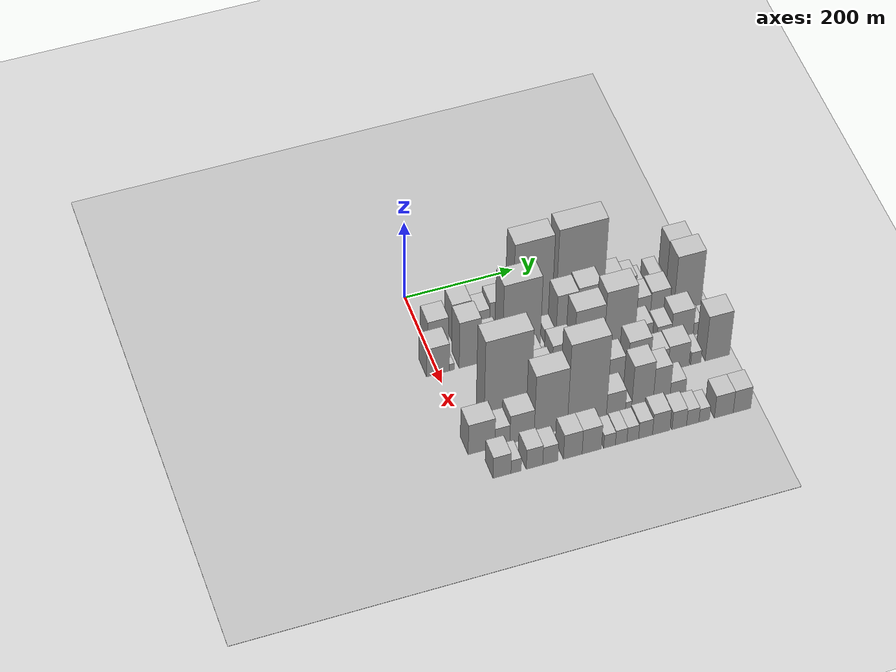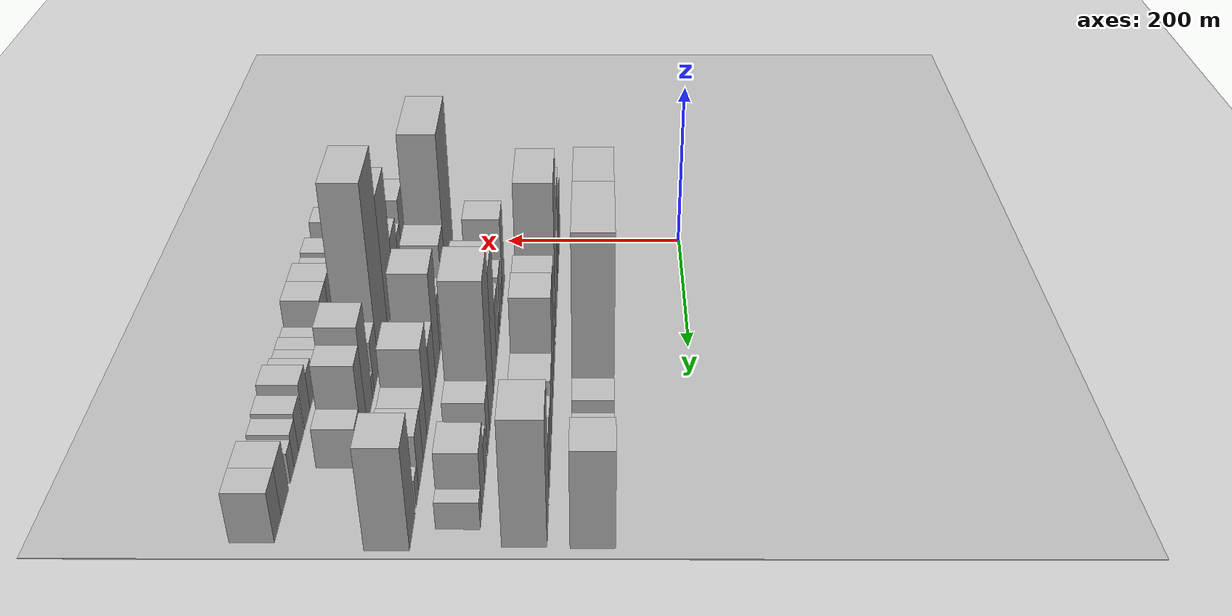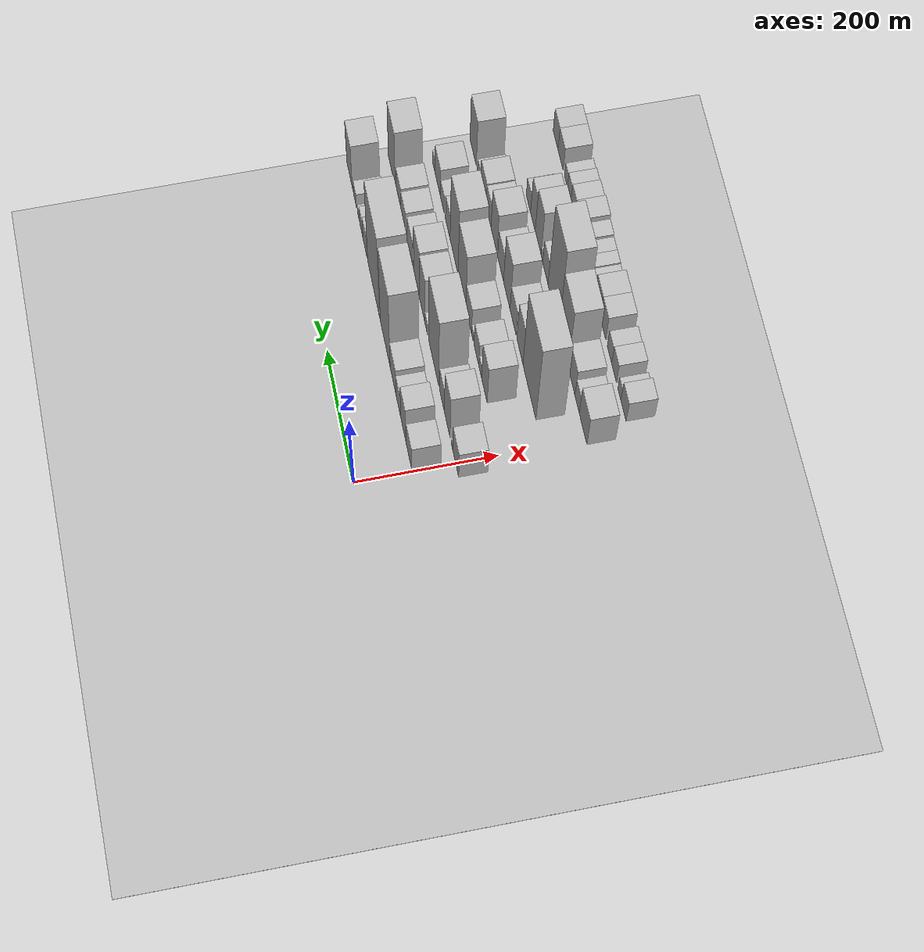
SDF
<sdf version="1.6">
 <world name="default">
  <include><name>ground_plane_1</name><uri>model://HANNAS_ground_plane</uri></include>
  <include>
   <name>ground_plane_2</name>
   <uri>model://HANNAS_ground_plane</uri>
   <pose>100 0 0  0 0 0</pose>
  </include>
  <model name="building_28">
   <static>1</static>
   <pose>100.0000 20.5680 0 0.000000 0.000000 0.000000</pose>
   <link name="link">
    <pose>0 0 34.50 0 0 0</pose>
    <collision name="collision"><geometry><box><size>40.0000 38.1749 69.0000</size></box></geometry></collision>
    <visual name="visual">
     <cast_shadows>0</cast_shadows>
     <geometry><box><size>40.0000 38.1749 69.0000</size></box></geometry>
     <material>
      <script>
       <uri>model://HANNAS_wall/materials/scripts</uri>
       <uri>model://HANNAS_wall/materials/textures</uri>
       <name>vrc/HANNAS_wall</name>
      </script>
     </material>
    </visual>
   </link>
  </model>
  <model name="building_29">
   <static>1</static>
   <pose>100.0000 63.3625 0 0.000000 0.000000 0.000000</pose>
   <link name="link">
    <pose>0 0 49.50 0 0 0</pose>
    <collision name="collision"><geometry><box><size>40.0000 35.4141 99.0000</size></box></geometry></collision>
    <visual name="visual">
     <cast_shadows>0</cast_shadows>
     <geometry><box><size>40.0000 35.4141 99.0000</size></box></geometry>
     <material>
      <script>
       <uri>model://HANNAS_wall/materials/scripts</uri>
       <uri>model://HANNAS_wall/materials/textures</uri>
       <name>vrc/HANNAS_wall</name>
      </script>
     </material>
    </visual>
   </link>
  </model>
  <model name="building_30">
   <static>1</static>
   <pose>100.0000 97.8033 0 0.000000 0.000000 0.000000</pose>
   <link name="link">
    <pose>0 0 31.50 0 0 0</pose>
    <collision name="collision"><geometry><box><size>40.0000 33.4676 63.0000</size></box></geometry></collision>
    <visual name="visual">
     <cast_shadows>0</cast_shadows>
     <geometry><box><size>40.0000 33.4676 63.0000</size></box></geometry>
     <material>
      <script>
       <uri>model://HANNAS_wall/materials/scripts</uri>
       <uri>model://HANNAS_wall/materials/textures</uri>
       <name>vrc/HANNAS_wall</name>
      </script>
     </material>
    </visual>
   </link>
  </model>
  <model name="building_31">
   <static>1</static>
   <pose>100.0000 135.9520 0 0.000000 0.000000 0.000000</pose>
   <link name="link">
    <pose>0 0 39.00 0 0 0</pose>
    <collision name="collision"><geometry><box><size>40.0000 42.8297 78.0000</size></box></geometry></collision>
    <visual name="visual">
     <cast_shadows>0</cast_shadows>
     <geometry><box><size>40.0000 42.8297 78.0000</size></box></geometry>
     <material>
      <script>
       <uri>model://HANNAS_wall/materials/scripts</uri>
       <uri>model://HANNAS_wall/materials/textures</uri>
       <name>vrc/HANNAS_wall</name>
      </script>
     </material>
    </visual>
   </link>
  </model>
  <model name="building_32">
   <static>1</static>
   <pose>100.0000 193.5673 0 0.000000 0.000000 0.000000</pose>
   <link name="link">
    <pose>0 0 108.00 0 0 0</pose>
    <collision name="collision"><geometry><box><size>40.0000 72.4009 216.0000</size></box></geometry></collision>
    <visual name="visual">
     <cast_shadows>0</cast_shadows>
     <geometry><box><size>40.0000 72.4009 216.0000</size></box></geometry>
     <material>
      <script>
       <uri>model://HANNAS_wall/materials/scripts</uri>
       <uri>model://HANNAS_wall/materials/textures</uri>
       <name>vrc/HANNAS_wall</name>
      </script>
     </material>
    </visual>
   </link>
  </model>
  <model name="building_33">
   <static>1</static>
   <pose>100.0000 233.4649 0 0.000000 0.000000 0.000000</pose>
   <link name="link">
    <pose>0 0 9.00 0 0 0</pose>
    <collision name="collision"><geometry><box><size>40.0000 7.3943 18.0000</size></box></geometry></collision>
    <visual name="visual">
     <cast_shadows>0</cast_shadows>
     <geometry><box><size>40.0000 7.3943 18.0000</size></box></geometry>
     <material>
      <script>
       <uri>model://HANNAS_wall/materials/scripts</uri>
       <uri>model://HANNAS_wall/materials/textures</uri>
       <name>vrc/HANNAS_wall</name>
      </script>
     </material>
    </visual>
   </link>
  </model>
  <model name="building_34">
   <static>1</static>
   <pose>100.0000 281.5969 0 0.000000 0.000000 0.000000</pose>
   <link name="link">
    <pose>0 0 112.50 0 0 0</pose>
    <collision name="collision"><geometry><box><size>40.0000 88.8697 225.0000</size></box></geometry></collision>
    <visual name="visual">
     <cast_shadows>0</cast_shadows>
     <geometry><box><size>40.0000 88.8697 225.0000</size></box></geometry>
     <material>
      <script>
       <uri>model://HANNAS_wall/materials/scripts</uri>
       <uri>model://HANNAS_wall/materials/textures</uri>
       <name>vrc/HANNAS_wall</name>
      </script>
     </material>
    </visual>
   </link>
  </model>
  <model name="building_35">
   <static>1</static>
   <pose>100.0000 346.0540 0 0.000000 0.000000 0.000000</pose>
   <link name="link">
    <pose>0 0 31.50 0 0 0</pose>
    <collision name="collision"><geometry><box><size>40.0000 32.0444 63.0000</size></box></geometry></collision>
    <visual name="visual">
     <cast_shadows>0</cast_shadows>
     <geometry><box><size>40.0000 32.0444 63.0000</size></box></geometry>
     <material>
      <script>
       <uri>model://HANNAS_wall/materials/scripts</uri>
       <uri>model://HANNAS_wall/materials/textures</uri>
       <name>vrc/HANNAS_wall</name>
      </script>
     </material>
    </visual>
   </link>
  </model>
  <model name="building_36">
   <static>1</static>
   <pose>100.0000 374.7525 0 0.000000 0.000000 0.000000</pose>
   <link name="link">
    <pose>0 0 24.00 0 0 0</pose>
    <collision name="collision"><geometry><box><size>40.0000 25.3526 48.0000</size></box></geometry></collision>
    <visual name="visual">
     <cast_shadows>0</cast_shadows>
     <geometry><box><size>40.0000 25.3526 48.0000</size></box></geometry>
     <material>
      <script>
       <uri>model://HANNAS_wall/materials/scripts</uri>
       <uri>model://HANNAS_wall/materials/textures</uri>
       <name>vrc/HANNAS_wall</name>
      </script>
     </material>
    </visual>
   </link>
  </model>
  <model name="building_37">
   <static>1</static>
   <pose>100.0000 396.3454 0 0.000000 0.000000 0.000000</pose>
   <link name="link">
    <pose>0 0 13.50 0 0 0</pose>
    <collision name="collision"><geometry><box><size>40.0000 11.8333 27.0000</size></box></geometry></collision>
    <visual name="visual">
     <cast_shadows>0</cast_shadows>
     <geometry><box><size>40.0000 11.8333 27.0000</size></box></geometry>
     <material>
      <script>
       <uri>model://HANNAS_wall/materials/scripts</uri>
       <uri>model://HANNAS_wall/materials/textures</uri>
       <name>vrc/HANNAS_wall</name>
      </script>
     </material>
    </visual>
   </link>
  </model>
  <model name="building_38">
   <static>1</static>
   <pose>100.0000 422.8853 0 0.000000 0.000000 0.000000</pose>
   <link name="link">
    <pose>0 0 19.50 0 0 0</pose>
    <collision name="collision"><geometry><box><size>40.0000 23.2465 39.0000</size></box></geometry></collision>
    <visual name="visual">
     <cast_shadows>0</cast_shadows>
     <geometry><box><size>40.0000 23.2465 39.0000</size></box></geometry>
     <material>
      <script>
       <uri>model://HANNAS_wall/materials/scripts</uri>
       <uri>model://HANNAS_wall/materials/textures</uri>
       <name>vrc/HANNAS_wall</name>
      </script>
     </material>
    </visual>
   </link>
  </model>
  <model name="building_39">
   <static>1</static>
   <pose>100.0000 441.6473 0 0.000000 0.000000 0.000000</pose>
   <link name="link">
    <pose>0 0 7.50 0 0 0</pose>
    <collision name="collision"><geometry><box><size>40.0000 6.2776 15.0000</size></box></geometry></collision>
    <visual name="visual">
     <cast_shadows>0</cast_shadows>
     <geometry><box><size>40.0000 6.2776 15.0000</size></box></geometry>
     <material>
      <script>
       <uri>model://HANNAS_wall/materials/scripts</uri>
       <uri>model://HANNAS_wall/materials/textures</uri>
       <name>vrc/HANNAS_wall</name>
      </script>
     </material>
    </visual>
   </link>
  </model>
  <model name="building_40">
   <static>1</static>
   <pose>100.0000 466.2544 0 0.000000 0.000000 0.000000</pose>
   <link name="link">
    <pose>0 0 57.00 0 0 0</pose>
    <collision name="collision"><geometry><box><size>40.0000 42.9366 114.0000</size></box></geometry></collision>
    <visual name="visual">
     <cast_shadows>0</cast_shadows>
     <geometry><box><size>40.0000 42.9366 114.0000</size></box></geometry>
     <material>
      <script>
       <uri>model://HANNAS_wall/materials/scripts</uri>
       <uri>model://HANNAS_wall/materials/textures</uri>
       <name>vrc/HANNAS_wall</name>
      </script>
     </material>
    </visual>
   </link>
  </model>
  <model name="building_79">
   <static>1</static>
   <pose>160.0000 -0.0028 0 0.000000 0.000000 0.000000</pose>
   <link name="link">
    <pose>0 0 37.50 0 0 0</pose>
    <collision name="collision"><geometry><box><size>40.0000 41.6627 75.0000</size></box></geometry></collision>
    <visual name="visual">
     <cast_shadows>0</cast_shadows>
     <geometry><box><size>40.0000 41.6627 75.0000</size></box></geometry>
     <material>
      <script>
       <uri>model://HANNAS_wall/materials/scripts</uri>
       <uri>model://HANNAS_wall/materials/textures</uri>
       <name>vrc/HANNAS_wall</name>
      </script>
     </material>
    </visual>
   </link>
  </model>
  <model name="building_80">
   <static>1</static>
   <pose>160.0000 25.1377 0 0.000000 0.000000 0.000000</pose>
   <link name="link">
    <pose>0 0 9.00 0 0 0</pose>
    <collision name="collision"><geometry><box><size>40.0000 8.6183 18.0000</size></box></geometry></collision>
    <visual name="visual">
     <cast_shadows>0</cast_shadows>
     <geometry><box><size>40.0000 8.6183 18.0000</size></box></geometry>
     <material>
      <script>
       <uri>model://HANNAS_wall/materials/scripts</uri>
       <uri>model://HANNAS_wall/materials/textures</uri>
       <name>vrc/HANNAS_wall</name>
      </script>
     </material>
    </visual>
   </link>
  </model>
  <model name="building_81">
   <static>1</static>
   <pose>160.0000 58.0273 0 0.000000 0.000000 0.000000</pose>
   <link name="link">
    <pose>0 0 61.50 0 0 0</pose>
    <collision name="collision"><geometry><box><size>40.0000 39.1610 123.0000</size></box></geometry></collision>
    <visual name="visual">
     <cast_shadows>0</cast_shadows>
     <geometry><box><size>40.0000 39.1610 123.0000</size></box></geometry>
     <material>
      <script>
       <uri>model://HANNAS_wall/materials/scripts</uri>
       <uri>model://HANNAS_wall/materials/textures</uri>
       <name>vrc/HANNAS_wall</name>
      </script>
     </material>
    </visual>
   </link>
  </model>
  <model name="building_82">
   <static>1</static>
   <pose>160.0000 94.8372 0 0.000000 0.000000 0.000000</pose>
   <link name="link">
    <pose>0 0 33.00 0 0 0</pose>
    <collision name="collision"><geometry><box><size>40.0000 34.4588 66.0000</size></box></geometry></collision>
    <visual name="visual">
     <cast_shadows>0</cast_shadows>
     <geometry><box><size>40.0000 34.4588 66.0000</size></box></geometry>
     <material>
      <script>
       <uri>model://HANNAS_wall/materials/scripts</uri>
       <uri>model://HANNAS_wall/materials/textures</uri>
       <name>vrc/HANNAS_wall</name>
      </script>
     </material>
    </visual>
   </link>
  </model>
  <model name="building_83">
   <static>1</static>
   <pose>160.0000 151.8277 0 0.000000 0.000000 0.000000</pose>
   <link name="link">
    <pose>0 0 96.00 0 0 0</pose>
    <collision name="collision"><geometry><box><size>40.0000 69.5223 192.0000</size></box></geometry></collision>
    <visual name="visual">
     <cast_shadows>0</cast_shadows>
     <geometry><box><size>40.0000 69.5223 192.0000</size></box></geometry>
     <material>
      <script>
       <uri>model://HANNAS_wall/materials/scripts</uri>
       <uri>model://HANNAS_wall/materials/textures</uri>
       <name>vrc/HANNAS_wall</name>
      </script>
     </material>
    </visual>
   </link>
  </model>
  <model name="building_84">
   <static>1</static>
   <pose>160.0000 205.9850 0 0.000000 0.000000 0.000000</pose>
   <link name="link">
    <pose>0 0 16.50 0 0 0</pose>
    <collision name="collision"><geometry><box><size>40.0000 18.7923 33.0000</size></box></geometry></collision>
    <visual name="visual">
     <cast_shadows>0</cast_shadows>
     <geometry><box><size>40.0000 18.7923 33.0000</size></box></geometry>
     <material>
      <script>
       <uri>model://HANNAS_wall/materials/scripts</uri>
       <uri>model://HANNAS_wall/materials/textures</uri>
       <name>vrc/HANNAS_wall</name>
      </script>
     </material>
    </visual>
   </link>
  </model>
  <model name="building_85">
   <static>1</static>
   <pose>160.0000 234.8938 0 0.000000 0.000000 0.000000</pose>
   <link name="link">
    <pose>0 0 63.00 0 0 0</pose>
    <collision name="collision"><geometry><box><size>40.0000 39.0253 126.0000</size></box></geometry></collision>
    <visual name="visual">
     <cast_shadows>0</cast_shadows>
     <geometry><box><size>40.0000 39.0253 126.0000</size></box></geometry>
     <material>
      <script>
       <uri>model://HANNAS_wall/materials/scripts</uri>
       <uri>model://HANNAS_wall/materials/textures</uri>
       <name>vrc/HANNAS_wall</name>
      </script>
     </material>
    </visual>
   </link>
  </model>
  <model name="building_86">
   <static>1</static>
   <pose>160.0000 275.4788 0 0.000000 0.000000 0.000000</pose>
   <link name="link">
    <pose>0 0 66.00 0 0 0</pose>
    <collision name="collision"><geometry><box><size>40.0000 42.1447 132.0000</size></box></geometry></collision>
    <visual name="visual">
     <cast_shadows>0</cast_shadows>
     <geometry><box><size>40.0000 42.1447 132.0000</size></box></geometry>
     <material>
      <script>
       <uri>model://HANNAS_wall/materials/scripts</uri>
       <uri>model://HANNAS_wall/materials/textures</uri>
       <name>vrc/HANNAS_wall</name>
      </script>
     </material>
    </visual>
   </link>
  </model>
  <model name="building_87">
   <static>1</static>
   <pose>160.0000 324.4943 0 0.000000 0.000000 0.000000</pose>
   <link name="link">
    <pose>0 0 36.00 0 0 0</pose>
    <collision name="collision"><geometry><box><size>40.0000 41.8863 72.0000</size></box></geometry></collision>
    <visual name="visual">
     <cast_shadows>0</cast_shadows>
     <geometry><box><size>40.0000 41.8863 72.0000</size></box></geometry>
     <material>
      <script>
       <uri>model://HANNAS_wall/materials/scripts</uri>
       <uri>model://HANNAS_wall/materials/textures</uri>
       <name>vrc/HANNAS_wall</name>
      </script>
     </material>
    </visual>
   </link>
  </model>
  <model name="building_88">
   <static>1</static>
   <pose>160.0000 373.0332 0 0.000000 0.000000 0.000000</pose>
   <link name="link">
    <pose>0 0 31.50 0 0 0</pose>
    <collision name="collision"><geometry><box><size>40.0000 35.1916 63.0000</size></box></geometry></collision>
    <visual name="visual">
     <cast_shadows>0</cast_shadows>
     <geometry><box><size>40.0000 35.1916 63.0000</size></box></geometry>
     <material>
      <script>
       <uri>model://HANNAS_wall/materials/scripts</uri>
       <uri>model://HANNAS_wall/materials/textures</uri>
       <name>vrc/HANNAS_wall</name>
      </script>
     </material>
    </visual>
   </link>
  </model>
  <model name="building_89">
   <static>1</static>
   <pose>160.0000 408.6458 0 0.000000 0.000000 0.000000</pose>
   <link name="link">
    <pose>0 0 34.50 0 0 0</pose>
    <collision name="collision"><geometry><box><size>40.0000 36.0336 69.0000</size></box></geometry></collision>
    <visual name="visual">
     <cast_shadows>0</cast_shadows>
     <geometry><box><size>40.0000 36.0336 69.0000</size></box></geometry>
     <material>
      <script>
       <uri>model://HANNAS_wall/materials/scripts</uri>
       <uri>model://HANNAS_wall/materials/textures</uri>
       <name>vrc/HANNAS_wall</name>
      </script>
     </material>
    </visual>
   </link>
  </model>
  <model name="building_90">
   <static>1</static>
   <pose>160.0000 460.5051 0 0.000000 0.000000 0.000000</pose>
   <link name="link">
    <pose>0 0 73.50 0 0 0</pose>
    <collision name="collision"><geometry><box><size>40.0000 51.6851 147.0000</size></box></geometry></collision>
    <visual name="visual">
     <cast_shadows>0</cast_shadows>
     <geometry><box><size>40.0000 51.6851 147.0000</size></box></geometry>
     <material>
      <script>
       <uri>model://HANNAS_wall/materials/scripts</uri>
       <uri>model://HANNAS_wall/materials/textures</uri>
       <name>vrc/HANNAS_wall</name>
      </script>
     </material>
    </visual>
   </link>
  </model>
  <model name="building_120">
   <static>1</static>
   <pose>220.0000 98.4463 0 0.000000 0.000000 0.000000</pose>
   <link name="link">
    <pose>0 0 52.50 0 0 0</pose>
    <collision name="collision"><geometry><box><size>40.0000 37.8514 105.0000</size></box></geometry></collision>
    <visual name="visual">
     <cast_shadows>0</cast_shadows>
     <geometry><box><size>40.0000 37.8514 105.0000</size></box></geometry>
     <material>
      <script>
       <uri>model://HANNAS_wall/materials/scripts</uri>
       <uri>model://HANNAS_wall/materials/textures</uri>
       <name>vrc/HANNAS_wall</name>
      </script>
     </material>
    </visual>
   </link>
  </model>
  <model name="building_121">
   <static>1</static>
   <pose>220.0000 126.3994 0 0.000000 0.000000 0.000000</pose>
   <link name="link">
    <pose>0 0 16.50 0 0 0</pose>
    <collision name="collision"><geometry><box><size>40.0000 18.0549 33.0000</size></box></geometry></collision>
    <visual name="visual">
     <cast_shadows>0</cast_shadows>
     <geometry><box><size>40.0000 18.0549 33.0000</size></box></geometry>
     <material>
      <script>
       <uri>model://HANNAS_wall/materials/scripts</uri>
       <uri>model://HANNAS_wall/materials/textures</uri>
       <name>vrc/HANNAS_wall</name>
      </script>
     </material>
    </visual>
   </link>
  </model>
  <model name="building_122">
   <static>1</static>
   <pose>220.0000 152.2395 0 0.000000 0.000000 0.000000</pose>
   <link name="link">
    <pose>0 0 33.00 0 0 0</pose>
    <collision name="collision"><geometry><box><size>40.0000 33.6254 66.0000</size></box></geometry></collision>
    <visual name="visual">
     <cast_shadows>0</cast_shadows>
     <geometry><box><size>40.0000 33.6254 66.0000</size></box></geometry>
     <material>
      <script>
       <uri>model://HANNAS_wall/materials/scripts</uri>
       <uri>model://HANNAS_wall/materials/textures</uri>
       <name>vrc/HANNAS_wall</name>
      </script>
     </material>
    </visual>
   </link>
  </model>
  <model name="building_123">
   <static>1</static>
   <pose>220.0000 180.9071 0 0.000000 0.000000 0.000000</pose>
   <link name="link">
    <pose>0 0 13.50 0 0 0</pose>
    <collision name="collision"><geometry><box><size>40.0000 11.7097 27.0000</size></box></geometry></collision>
    <visual name="visual">
     <cast_shadows>0</cast_shadows>
     <geometry><box><size>40.0000 11.7097 27.0000</size></box></geometry>
     <material>
      <script>
       <uri>model://HANNAS_wall/materials/scripts</uri>
       <uri>model://HANNAS_wall/materials/textures</uri>
       <name>vrc/HANNAS_wall</name>
      </script>
     </material>
    </visual>
   </link>
  </model>
  <model name="building_124">
   <static>1</static>
   <pose>220.0000 206.4666 0 0.000000 0.000000 0.000000</pose>
   <link name="link">
    <pose>0 0 36.00 0 0 0</pose>
    <collision name="collision"><geometry><box><size>40.0000 39.4092 72.0000</size></box></geometry></collision>
    <visual name="visual">
     <cast_shadows>0</cast_shadows>
     <geometry><box><size>40.0000 39.4092 72.0000</size></box></geometry>
     <material>
      <script>
       <uri>model://HANNAS_wall/materials/scripts</uri>
       <uri>model://HANNAS_wall/materials/textures</uri>
       <name>vrc/HANNAS_wall</name>
      </script>
     </material>
    </visual>
   </link>
  </model>
  <model name="building_125">
   <static>1</static>
   <pose>220.0000 253.4087 0 0.000000 0.000000 0.000000</pose>
   <link name="link">
    <pose>0 0 75.00 0 0 0</pose>
    <collision name="collision"><geometry><box><size>40.0000 54.4751 150.0000</size></box></geometry></collision>
    <visual name="visual">
     <cast_shadows>0</cast_shadows>
     <geometry><box><size>40.0000 54.4751 150.0000</size></box></geometry>
     <material>
      <script>
       <uri>model://HANNAS_wall/materials/scripts</uri>
       <uri>model://HANNAS_wall/materials/textures</uri>
       <name>vrc/HANNAS_wall</name>
      </script>
     </material>
    </visual>
   </link>
  </model>
  <model name="building_126">
   <static>1</static>
   <pose>220.0000 308.9413 0 0.000000 0.000000 0.000000</pose>
   <link name="link">
    <pose>0 0 90.00 0 0 0</pose>
    <collision name="collision"><geometry><box><size>40.0000 56.5900 180.0000</size></box></geometry></collision>
    <visual name="visual">
     <cast_shadows>0</cast_shadows>
     <geometry><box><size>40.0000 56.5900 180.0000</size></box></geometry>
     <material>
      <script>
       <uri>model://HANNAS_wall/materials/scripts</uri>
       <uri>model://HANNAS_wall/materials/textures</uri>
       <name>vrc/HANNAS_wall</name>
      </script>
     </material>
    </visual>
   </link>
  </model>
  <model name="building_127">
   <static>1</static>
   <pose>220.0000 353.8009 0 0.000000 0.000000 0.000000</pose>
   <link name="link">
    <pose>0 0 33.00 0 0 0</pose>
    <collision name="collision"><geometry><box><size>40.0000 33.1292 66.0000</size></box></geometry></collision>
    <visual name="visual">
     <cast_shadows>0</cast_shadows>
     <geometry><box><size>40.0000 33.1292 66.0000</size></box></geometry>
     <material>
      <script>
       <uri>model://HANNAS_wall/materials/scripts</uri>
       <uri>model://HANNAS_wall/materials/textures</uri>
       <name>vrc/HANNAS_wall</name>
      </script>
     </material>
    </visual>
   </link>
  </model>
  <model name="building_128">
   <static>1</static>
   <pose>220.0000 392.8090 0 0.000000 0.000000 0.000000</pose>
   <link name="link">
    <pose>0 0 24.00 0 0 0</pose>
    <collision name="collision"><geometry><box><size>40.0000 26.8870 48.0000</size></box></geometry></collision>
    <visual name="visual">
     <cast_shadows>0</cast_shadows>
     <geometry><box><size>40.0000 26.8870 48.0000</size></box></geometry>
     <material>
      <script>
       <uri>model://HANNAS_wall/materials/scripts</uri>
       <uri>model://HANNAS_wall/materials/textures</uri>
       <name>vrc/HANNAS_wall</name>
      </script>
     </material>
    </visual>
   </link>
  </model>
  <model name="building_129">
   <static>1</static>
   <pose>220.0000 426.8729 0 0.000000 0.000000 0.000000</pose>
   <link name="link">
    <pose>0 0 37.50 0 0 0</pose>
    <collision name="collision"><geometry><box><size>40.0000 41.2408 75.0000</size></box></geometry></collision>
    <visual name="visual">
     <cast_shadows>0</cast_shadows>
     <geometry><box><size>40.0000 41.2408 75.0000</size></box></geometry>
     <material>
      <script>
       <uri>model://HANNAS_wall/materials/scripts</uri>
       <uri>model://HANNAS_wall/materials/textures</uri>
       <name>vrc/HANNAS_wall</name>
      </script>
     </material>
    </visual>
   </link>
  </model>
  <model name="building_130">
   <static>1</static>
   <pose>220.0000 456.2334 0 0.000000 0.000000 0.000000</pose>
   <link name="link">
    <pose>0 0 16.50 0 0 0</pose>
    <collision name="collision"><geometry><box><size>40.0000 17.4803 33.0000</size></box></geometry></collision>
    <visual name="visual">
     <cast_shadows>0</cast_shadows>
     <geometry><box><size>40.0000 17.4803 33.0000</size></box></geometry>
     <material>
      <script>
       <uri>model://HANNAS_wall/materials/scripts</uri>
       <uri>model://HANNAS_wall/materials/textures</uri>
       <name>vrc/HANNAS_wall</name>
      </script>
     </material>
    </visual>
   </link>
  </model>
  <model name="building_168">
   <static>1</static>
   <pose>280.0000 84.4122 0 0.000000 0.000000 0.000000</pose>
   <link name="link">
    <pose>0 0 106.50 0 0 0</pose>
    <collision name="collision"><geometry><box><size>40.0000 84.9250 213.0000</size></box></geometry></collision>
    <visual name="visual">
     <cast_shadows>0</cast_shadows>
     <geometry><box><size>40.0000 84.9250 213.0000</size></box></geometry>
     <material>
      <script>
       <uri>model://HANNAS_wall/materials/scripts</uri>
       <uri>model://HANNAS_wall/materials/textures</uri>
       <name>vrc/HANNAS_wall</name>
      </script>
     </material>
    </visual>
   </link>
  </model>
  <model name="building_169">
   <static>1</static>
   <pose>280.0000 146.9369 0 0.000000 0.000000 0.000000</pose>
   <link name="link">
    <pose>0 0 52.50 0 0 0</pose>
    <collision name="collision"><geometry><box><size>40.0000 40.1244 105.0000</size></box></geometry></collision>
    <visual name="visual">
     <cast_shadows>0</cast_shadows>
     <geometry><box><size>40.0000 40.1244 105.0000</size></box></geometry>
     <material>
      <script>
       <uri>model://HANNAS_wall/materials/scripts</uri>
       <uri>model://HANNAS_wall/materials/textures</uri>
       <name>vrc/HANNAS_wall</name>
      </script>
     </material>
    </visual>
   </link>
  </model>
  <model name="building_170">
   <static>1</static>
   <pose>280.0000 192.9327 0 0.000000 0.000000 0.000000</pose>
   <link name="link">
    <pose>0 0 34.50 0 0 0</pose>
    <collision name="collision"><geometry><box><size>40.0000 39.8671 69.0000</size></box></geometry></collision>
    <visual name="visual">
     <cast_shadows>0</cast_shadows>
     <geometry><box><size>40.0000 39.8671 69.0000</size></box></geometry>
     <material>
      <script>
       <uri>model://HANNAS_wall/materials/scripts</uri>
       <uri>model://HANNAS_wall/materials/textures</uri>
       <name>vrc/HANNAS_wall</name>
      </script>
     </material>
    </visual>
   </link>
  </model>
  <model name="building_171">
   <static>1</static>
   <pose>280.0000 234.9826 0 0.000000 0.000000 0.000000</pose>
   <link name="link">
    <pose>0 0 66.00 0 0 0</pose>
    <collision name="collision"><geometry><box><size>40.0000 44.2328 132.0000</size></box></geometry></collision>
    <visual name="visual">
     <cast_shadows>0</cast_shadows>
     <geometry><box><size>40.0000 44.2328 132.0000</size></box></geometry>
     <material>
      <script>
       <uri>model://HANNAS_wall/materials/scripts</uri>
       <uri>model://HANNAS_wall/materials/textures</uri>
       <name>vrc/HANNAS_wall</name>
      </script>
     </material>
    </visual>
   </link>
  </model>
  <model name="building_172">
   <static>1</static>
   <pose>280.0000 277.1213 0 0.000000 0.000000 0.000000</pose>
   <link name="link">
    <pose>0 0 37.50 0 0 0</pose>
    <collision name="collision"><geometry><box><size>40.0000 40.0447 75.0000</size></box></geometry></collision>
    <visual name="visual">
     <cast_shadows>0</cast_shadows>
     <geometry><box><size>40.0000 40.0447 75.0000</size></box></geometry>
     <material>
      <script>
       <uri>model://HANNAS_wall/materials/scripts</uri>
       <uri>model://HANNAS_wall/materials/textures</uri>
       <name>vrc/HANNAS_wall</name>
      </script>
     </material>
    </visual>
   </link>
  </model>
  <model name="building_173">
   <static>1</static>
   <pose>280.0000 322.7840 0 0.000000 0.000000 0.000000</pose>
   <link name="link">
    <pose>0 0 54.00 0 0 0</pose>
    <collision name="collision"><geometry><box><size>40.0000 41.2805 108.0000</size></box></geometry></collision>
    <visual name="visual">
     <cast_shadows>0</cast_shadows>
     <geometry><box><size>40.0000 41.2805 108.0000</size></box></geometry>
     <material>
      <script>
       <uri>model://HANNAS_wall/materials/scripts</uri>
       <uri>model://HANNAS_wall/materials/textures</uri>
       <name>vrc/HANNAS_wall</name>
      </script>
     </material>
    </visual>
   </link>
  </model>
  <model name="building_174">
   <static>1</static>
   <pose>280.0000 360.2947 0 0.000000 0.000000 0.000000</pose>
   <link name="link">
    <pose>0 0 31.50 0 0 0</pose>
    <collision name="collision"><geometry><box><size>40.0000 33.7409 63.0000</size></box></geometry></collision>
    <visual name="visual">
     <cast_shadows>0</cast_shadows>
     <geometry><box><size>40.0000 33.7409 63.0000</size></box></geometry>
     <material>
      <script>
       <uri>model://HANNAS_wall/materials/scripts</uri>
       <uri>model://HANNAS_wall/materials/textures</uri>
       <name>vrc/HANNAS_wall</name>
      </script>
     </material>
    </visual>
   </link>
  </model>
  <model name="building_175">
   <static>1</static>
   <pose>280.0000 396.7374 0 0.000000 0.000000 0.000000</pose>
   <link name="link">
    <pose>0 0 33.00 0 0 0</pose>
    <collision name="collision"><geometry><box><size>40.0000 39.1446 66.0000</size></box></geometry></collision>
    <visual name="visual">
     <cast_shadows>0</cast_shadows>
     <geometry><box><size>40.0000 39.1446 66.0000</size></box></geometry>
     <material>
      <script>
       <uri>model://HANNAS_wall/materials/scripts</uri>
       <uri>model://HANNAS_wall/materials/textures</uri>
       <name>vrc/HANNAS_wall</name>
      </script>
     </material>
    </visual>
   </link>
  </model>
  <model name="building_176">
   <static>1</static>
   <pose>280.0000 428.7506 0 0.000000 0.000000 0.000000</pose>
   <link name="link">
    <pose>0 0 16.50 0 0 0</pose>
    <collision name="collision"><geometry><box><size>40.0000 18.8817 33.0000</size></box></geometry></collision>
    <visual name="visual">
     <cast_shadows>0</cast_shadows>
     <geometry><box><size>40.0000 18.8817 33.0000</size></box></geometry>
     <material>
      <script>
       <uri>model://HANNAS_wall/materials/scripts</uri>
       <uri>model://HANNAS_wall/materials/textures</uri>
       <name>vrc/HANNAS_wall</name>
      </script>
     </material>
    </visual>
   </link>
  </model>
  <model name="building_177">
   <static>1</static>
   <pose>280.0000 468.6353 0 0.000000 0.000000 0.000000</pose>
   <link name="link">
    <pose>0 0 60.00 0 0 0</pose>
    <collision name="collision"><geometry><box><size>40.0000 44.8878 120.0000</size></box></geometry></collision>
    <visual name="visual">
     <cast_shadows>0</cast_shadows>
     <geometry><box><size>40.0000 44.8878 120.0000</size></box></geometry>
     <material>
      <script>
       <uri>model://HANNAS_wall/materials/scripts</uri>
       <uri>model://HANNAS_wall/materials/textures</uri>
       <name>vrc/HANNAS_wall</name>
      </script>
     </material>
    </visual>
   </link>
  </model>
  <model name="building_217">
   <static>1</static>
   <pose>340.0000 16.5200 0 0.000000 0.000000 0.000000</pose>
   <link name="link">
    <pose>0 0 40.50 0 0 0</pose>
    <collision name="collision"><geometry><box><size>40.0000 47.6952 81.0000</size></box></geometry></collision>
    <visual name="visual">
     <cast_shadows>0</cast_shadows>
     <geometry><box><size>40.0000 47.6952 81.0000</size></box></geometry>
     <material>
      <script>
       <uri>model://HANNAS_wall/materials/scripts</uri>
       <uri>model://HANNAS_wall/materials/textures</uri>
       <name>vrc/HANNAS_wall</name>
      </script>
     </material>
    </visual>
   </link>
  </model>
  <model name="building_218">
   <static>1</static>
   <pose>340.0000 53.7636 0 0.000000 0.000000 0.000000</pose>
   <link name="link">
    <pose>0 0 25.50 0 0 0</pose>
    <collision name="collision"><geometry><box><size>40.0000 26.7921 51.0000</size></box></geometry></collision>
    <visual name="visual">
     <cast_shadows>0</cast_shadows>
     <geometry><box><size>40.0000 26.7921 51.0000</size></box></geometry>
     <material>
      <script>
       <uri>model://HANNAS_wall/materials/scripts</uri>
       <uri>model://HANNAS_wall/materials/textures</uri>
       <name>vrc/HANNAS_wall</name>
      </script>
     </material>
    </visual>
   </link>
  </model>
  <model name="building_219">
   <static>1</static>
   <pose>340.0000 88.9568 0 0.000000 0.000000 0.000000</pose>
   <link name="link">
    <pose>0 0 37.50 0 0 0</pose>
    <collision name="collision"><geometry><box><size>40.0000 43.5942 75.0000</size></box></geometry></collision>
    <visual name="visual">
     <cast_shadows>0</cast_shadows>
     <geometry><box><size>40.0000 43.5942 75.0000</size></box></geometry>
     <material>
      <script>
       <uri>model://HANNAS_wall/materials/scripts</uri>
       <uri>model://HANNAS_wall/materials/textures</uri>
       <name>vrc/HANNAS_wall</name>
      </script>
     </material>
    </visual>
   </link>
  </model>
  <model name="building_220">
   <static>1</static>
   <pose>340.0000 140.6937 0 0.000000 0.000000 0.000000</pose>
   <link name="link">
    <pose>0 0 82.50 0 0 0</pose>
    <collision name="collision"><geometry><box><size>40.0000 59.8796 165.0000</size></box></geometry></collision>
    <visual name="visual">
     <cast_shadows>0</cast_shadows>
     <geometry><box><size>40.0000 59.8796 165.0000</size></box></geometry>
     <material>
      <script>
       <uri>model://HANNAS_wall/materials/scripts</uri>
       <uri>model://HANNAS_wall/materials/textures</uri>
       <name>vrc/HANNAS_wall</name>
      </script>
     </material>
    </visual>
   </link>
  </model>
  <model name="building_221">
   <static>1</static>
   <pose>340.0000 205.9894 0 0.000000 0.000000 0.000000</pose>
   <link name="link">
    <pose>0 0 112.50 0 0 0</pose>
    <collision name="collision"><geometry><box><size>40.0000 70.7118 225.0000</size></box></geometry></collision>
    <visual name="visual">
     <cast_shadows>0</cast_shadows>
     <geometry><box><size>40.0000 70.7118 225.0000</size></box></geometry>
     <material>
      <script>
       <uri>model://HANNAS_wall/materials/scripts</uri>
       <uri>model://HANNAS_wall/materials/textures</uri>
       <name>vrc/HANNAS_wall</name>
      </script>
     </material>
    </visual>
   </link>
  </model>
  <model name="building_222">
   <static>1</static>
   <pose>340.0000 258.6424 0 0.000000 0.000000 0.000000</pose>
   <link name="link">
    <pose>0 0 31.50 0 0 0</pose>
    <collision name="collision"><geometry><box><size>40.0000 34.5944 63.0000</size></box></geometry></collision>
    <visual name="visual">
     <cast_shadows>0</cast_shadows>
     <geometry><box><size>40.0000 34.5944 63.0000</size></box></geometry>
     <material>
      <script>
       <uri>model://HANNAS_wall/materials/scripts</uri>
       <uri>model://HANNAS_wall/materials/textures</uri>
       <name>vrc/HANNAS_wall</name>
      </script>
     </material>
    </visual>
   </link>
  </model>
  <model name="building_223">
   <static>1</static>
   <pose>340.0000 281.5530 0 0.000000 0.000000 0.000000</pose>
   <link name="link">
    <pose>0 0 13.50 0 0 0</pose>
    <collision name="collision"><geometry><box><size>40.0000 11.2267 27.0000</size></box></geometry></collision>
    <visual name="visual">
     <cast_shadows>0</cast_shadows>
     <geometry><box><size>40.0000 11.2267 27.0000</size></box></geometry>
     <material>
      <script>
       <uri>model://HANNAS_wall/materials/scripts</uri>
       <uri>model://HANNAS_wall/materials/textures</uri>
       <name>vrc/HANNAS_wall</name>
      </script>
     </material>
    </visual>
   </link>
  </model>
  <model name="building_224">
   <static>1</static>
   <pose>340.0000 306.6967 0 0.000000 0.000000 0.000000</pose>
   <link name="link">
    <pose>0 0 60.00 0 0 0</pose>
    <collision name="collision"><geometry><box><size>40.0000 39.0607 120.0000</size></box></geometry></collision>
    <visual name="visual">
     <cast_shadows>0</cast_shadows>
     <geometry><box><size>40.0000 39.0607 120.0000</size></box></geometry>
     <material>
      <script>
       <uri>model://HANNAS_wall/materials/scripts</uri>
       <uri>model://HANNAS_wall/materials/textures</uri>
       <name>vrc/HANNAS_wall</name>
      </script>
     </material>
    </visual>
   </link>
  </model>
  <model name="building_225">
   <static>1</static>
   <pose>340.0000 341.6482 0 0.000000 0.000000 0.000000</pose>
   <link name="link">
    <pose>0 0 49.50 0 0 0</pose>
    <collision name="collision"><geometry><box><size>40.0000 30.8423 99.0000</size></box></geometry></collision>
    <visual name="visual">
     <cast_shadows>0</cast_shadows>
     <geometry><box><size>40.0000 30.8423 99.0000</size></box></geometry>
     <material>
      <script>
       <uri>model://HANNAS_wall/materials/scripts</uri>
       <uri>model://HANNAS_wall/materials/textures</uri>
       <name>vrc/HANNAS_wall</name>
      </script>
     </material>
    </visual>
   </link>
  </model>
  <model name="building_226">
   <static>1</static>
   <pose>340.0000 371.4220 0 0.000000 0.000000 0.000000</pose>
   <link name="link">
    <pose>0 0 24.00 0 0 0</pose>
    <collision name="collision"><geometry><box><size>40.0000 28.7054 48.0000</size></box></geometry></collision>
    <visual name="visual">
     <cast_shadows>0</cast_shadows>
     <geometry><box><size>40.0000 28.7054 48.0000</size></box></geometry>
     <material>
      <script>
       <uri>model://HANNAS_wall/materials/scripts</uri>
       <uri>model://HANNAS_wall/materials/textures</uri>
       <name>vrc/HANNAS_wall</name>
      </script>
     </material>
    </visual>
   </link>
  </model>
  <model name="building_263">
   <static>1</static>
   <pose>400.0000 32.0837 0 0.000000 0.000000 0.000000</pose>
   <link name="link">
    <pose>0 0 28.50 0 0 0</pose>
    <collision name="collision"><geometry><box><size>40.0000 31.9016 57.0000</size></box></geometry></collision>
    <visual name="visual">
     <cast_shadows>0</cast_shadows>
     <geometry><box><size>40.0000 31.9016 57.0000</size></box></geometry>
     <material>
      <script>
       <uri>model://HANNAS_wall/materials/scripts</uri>
       <uri>model://HANNAS_wall/materials/textures</uri>
       <name>vrc/HANNAS_wall</name>
      </script>
     </material>
    </visual>
   </link>
  </model>
  <model name="building_264">
   <static>1</static>
   <pose>400.0000 57.1484 0 0.000000 0.000000 0.000000</pose>
   <link name="link">
    <pose>0 0 18.00 0 0 0</pose>
    <collision name="collision"><geometry><box><size>40.0000 18.2278 36.0000</size></box></geometry></collision>
    <visual name="visual">
     <cast_shadows>0</cast_shadows>
     <geometry><box><size>40.0000 18.2278 36.0000</size></box></geometry>
     <material>
      <script>
       <uri>model://HANNAS_wall/materials/scripts</uri>
       <uri>model://HANNAS_wall/materials/textures</uri>
       <name>vrc/HANNAS_wall</name>
      </script>
     </material>
    </visual>
   </link>
  </model>
  <model name="building_265">
   <static>1</static>
   <pose>400.0000 89.9898 0 0.000000 0.000000 0.000000</pose>
   <link name="link">
    <pose>0 0 27.00 0 0 0</pose>
    <collision name="collision"><geometry><box><size>40.0000 29.4550 54.0000</size></box></geometry></collision>
    <visual name="visual">
     <cast_shadows>0</cast_shadows>
     <geometry><box><size>40.0000 29.4550 54.0000</size></box></geometry>
     <material>
      <script>
       <uri>model://HANNAS_wall/materials/scripts</uri>
       <uri>model://HANNAS_wall/materials/textures</uri>
       <name>vrc/HANNAS_wall</name>
      </script>
     </material>
    </visual>
   </link>
  </model>
  <model name="building_266">
   <static>1</static>
   <pose>400.0000 118.2662 0 0.000000 0.000000 0.000000</pose>
   <link name="link">
    <pose>0 0 24.00 0 0 0</pose>
    <collision name="collision"><geometry><box><size>40.0000 27.0978 48.0000</size></box></geometry></collision>
    <visual name="visual">
     <cast_shadows>0</cast_shadows>
     <geometry><box><size>40.0000 27.0978 48.0000</size></box></geometry>
     <material>
      <script>
       <uri>model://HANNAS_wall/materials/scripts</uri>
       <uri>model://HANNAS_wall/materials/textures</uri>
       <name>vrc/HANNAS_wall</name>
      </script>
     </material>
    </visual>
   </link>
  </model>
  <model name="building_267">
   <static>1</static>
   <pose>400.0000 158.5385 0 0.000000 0.000000 0.000000</pose>
   <link name="link">
    <pose>0 0 33.00 0 0 0</pose>
    <collision name="collision"><geometry><box><size>40.0000 33.4467 66.0000</size></box></geometry></collision>
    <visual name="visual">
     <cast_shadows>0</cast_shadows>
     <geometry><box><size>40.0000 33.4467 66.0000</size></box></geometry>
     <material>
      <script>
       <uri>model://HANNAS_wall/materials/scripts</uri>
       <uri>model://HANNAS_wall/materials/textures</uri>
       <name>vrc/HANNAS_wall</name>
      </script>
     </material>
    </visual>
   </link>
  </model>
  <model name="building_268">
   <static>1</static>
   <pose>400.0000 192.7314 0 0.000000 0.000000 0.000000</pose>
   <link name="link">
    <pose>0 0 33.00 0 0 0</pose>
    <collision name="collision"><geometry><box><size>40.0000 34.9391 66.0000</size></box></geometry></collision>
    <visual name="visual">
     <cast_shadows>0</cast_shadows>
     <geometry><box><size>40.0000 34.9391 66.0000</size></box></geometry>
     <material>
      <script>
       <uri>model://HANNAS_wall/materials/scripts</uri>
       <uri>model://HANNAS_wall/materials/textures</uri>
       <name>vrc/HANNAS_wall</name>
      </script>
     </material>
    </visual>
   </link>
  </model>
  <model name="building_269">
   <static>1</static>
   <pose>400.0000 224.7791 0 0.000000 0.000000 0.000000</pose>
   <link name="link">
    <pose>0 0 18.00 0 0 0</pose>
    <collision name="collision"><geometry><box><size>40.0000 21.1562 36.0000</size></box></geometry></collision>
    <visual name="visual">
     <cast_shadows>0</cast_shadows>
     <geometry><box><size>40.0000 21.1562 36.0000</size></box></geometry>
     <material>
      <script>
       <uri>model://HANNAS_wall/materials/scripts</uri>
       <uri>model://HANNAS_wall/materials/textures</uri>
       <name>vrc/HANNAS_wall</name>
      </script>
     </material>
    </visual>
   </link>
  </model>
  <model name="building_270">
   <static>1</static>
   <pose>400.0000 245.7530 0 0.000000 0.000000 0.000000</pose>
   <link name="link">
    <pose>0 0 19.50 0 0 0</pose>
    <collision name="collision"><geometry><box><size>40.0000 20.7917 39.0000</size></box></geometry></collision>
    <visual name="visual">
     <cast_shadows>0</cast_shadows>
     <geometry><box><size>40.0000 20.7917 39.0000</size></box></geometry>
     <material>
      <script>
       <uri>model://HANNAS_wall/materials/scripts</uri>
       <uri>model://HANNAS_wall/materials/textures</uri>
       <name>vrc/HANNAS_wall</name>
      </script>
     </material>
    </visual>
   </link>
  </model>
  <model name="building_271">
   <static>1</static>
   <pose>400.0000 266.6910 0 0.000000 0.000000 0.000000</pose>
   <link name="link">
    <pose>0 0 19.50 0 0 0</pose>
    <collision name="collision"><geometry><box><size>40.0000 21.0842 39.0000</size></box></geometry></collision>
    <visual name="visual">
     <cast_shadows>0</cast_shadows>
     <geometry><box><size>40.0000 21.0842 39.0000</size></box></geometry>
     <material>
      <script>
       <uri>model://HANNAS_wall/materials/scripts</uri>
       <uri>model://HANNAS_wall/materials/textures</uri>
       <name>vrc/HANNAS_wall</name>
      </script>
     </material>
    </visual>
   </link>
  </model>
  <model name="building_272">
   <static>1</static>
   <pose>400.0000 289.8108 0 0.000000 0.000000 0.000000</pose>
   <link name="link">
    <pose>0 0 22.50 0 0 0</pose>
    <collision name="collision"><geometry><box><size>40.0000 25.1553 45.0000</size></box></geometry></collision>
    <visual name="visual">
     <cast_shadows>0</cast_shadows>
     <geometry><box><size>40.0000 25.1553 45.0000</size></box></geometry>
     <material>
      <script>
       <uri>model://HANNAS_wall/materials/scripts</uri>
       <uri>model://HANNAS_wall/materials/textures</uri>
       <name>vrc/HANNAS_wall</name>
      </script>
     </material>
    </visual>
   </link>
  </model>
  <model name="building_273">
   <static>1</static>
   <pose>400.0000 318.1609 0 0.000000 0.000000 0.000000</pose>
   <link name="link">
    <pose>0 0 28.50 0 0 0</pose>
    <collision name="collision"><geometry><box><size>40.0000 31.5449 57.0000</size></box></geometry></collision>
    <visual name="visual">
     <cast_shadows>0</cast_shadows>
     <geometry><box><size>40.0000 31.5449 57.0000</size></box></geometry>
     <material>
      <script>
       <uri>model://HANNAS_wall/materials/scripts</uri>
       <uri>model://HANNAS_wall/materials/textures</uri>
       <name>vrc/HANNAS_wall</name>
      </script>
     </material>
    </visual>
   </link>
  </model>
  <model name="building_274">
   <static>1</static>
   <pose>400.0000 351.1851 0 0.000000 0.000000 0.000000</pose>
   <link name="link">
    <pose>0 0 24.00 0 0 0</pose>
    <collision name="collision"><geometry><box><size>40.0000 26.5035 48.0000</size></box></geometry></collision>
    <visual name="visual">
     <cast_shadows>0</cast_shadows>
     <geometry><box><size>40.0000 26.5035 48.0000</size></box></geometry>
     <material>
      <script>
       <uri>model://HANNAS_wall/materials/scripts</uri>
       <uri>model://HANNAS_wall/materials/textures</uri>
       <name>vrc/HANNAS_wall</name>
      </script>
     </material>
    </visual>
   </link>
  </model>
  <model name="building_275">
   <static>1</static>
   <pose>400.0000 375.7344 0 0.000000 0.000000 0.000000</pose>
   <link name="link">
    <pose>0 0 21.00 0 0 0</pose>
    <collision name="collision"><geometry><box><size>40.0000 22.5950 42.0000</size></box></geometry></collision>
    <visual name="visual">
     <cast_shadows>0</cast_shadows>
     <geometry><box><size>40.0000 22.5950 42.0000</size></box></geometry>
     <material>
      <script>
       <uri>model://HANNAS_wall/materials/scripts</uri>
       <uri>model://HANNAS_wall/materials/textures</uri>
       <name>vrc/HANNAS_wall</name>
      </script>
     </material>
    </visual>
   </link>
  </model>
  <model name="building_276">
   <static>1</static>
   <pose>400.0000 396.6692 0 0.000000 0.000000 0.000000</pose>
   <link name="link">
    <pose>0 0 18.00 0 0 0</pose>
    <collision name="collision"><geometry><box><size>40.0000 19.2746 36.0000</size></box></geometry></collision>
    <visual name="visual">
     <cast_shadows>0</cast_shadows>
     <geometry><box><size>40.0000 19.2746 36.0000</size></box></geometry>
     <material>
      <script>
       <uri>model://HANNAS_wall/materials/scripts</uri>
       <uri>model://HANNAS_wall/materials/textures</uri>
       <name>vrc/HANNAS_wall</name>
      </script>
     </material>
    </visual>
   </link>
  </model>
  <model name="building_277">
   <static>1</static>
   <pose>400.0000 432.5253 0 0.000000 0.000000 0.000000</pose>
   <link name="link">
    <pose>0 0 30.00 0 0 0</pose>
    <collision name="collision"><geometry><box><size>40.0000 34.4377 60.0000</size></box></geometry></collision>
    <visual name="visual">
     <cast_shadows>0</cast_shadows>
     <geometry><box><size>40.0000 34.4377 60.0000</size></box></geometry>
     <material>
      <script>
       <uri>model://HANNAS_wall/materials/scripts</uri>
       <uri>model://HANNAS_wall/materials/textures</uri>
       <name>vrc/HANNAS_wall</name>
      </script>
     </material>
    </visual>
   </link>
  </model>
  <model name="building_278">
   <static>1</static>
   <pose>400.0000 465.7537 0 0.000000 0.000000 0.000000</pose>
   <link name="link">
    <pose>0 0 30.00 0 0 0</pose>
    <collision name="collision"><geometry><box><size>40.0000 32.0190 60.0000</size></box></geometry></collision>
    <visual name="visual">
     <cast_shadows>0</cast_shadows>
     <geometry><box><size>40.0000 32.0190 60.0000</size></box></geometry>
     <material>
      <script>
       <uri>model://HANNAS_wall/materials/scripts</uri>
       <uri>model://HANNAS_wall/materials/textures</uri>
       <name>vrc/HANNAS_wall</name>
      </script>
     </material>
    </visual>
   </link>
  </model>
 </world>
</sdf>
